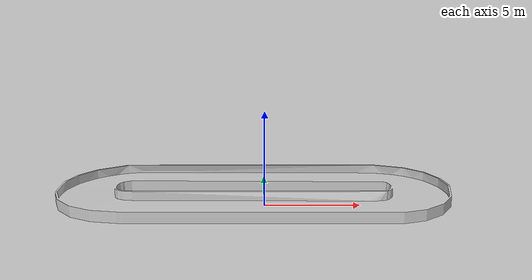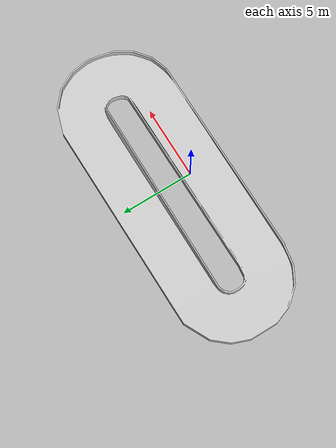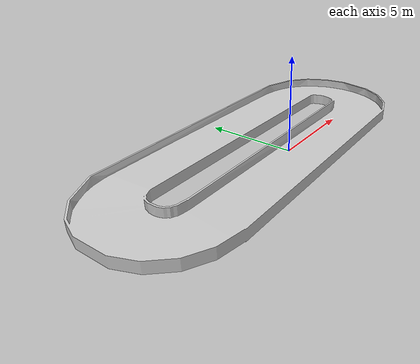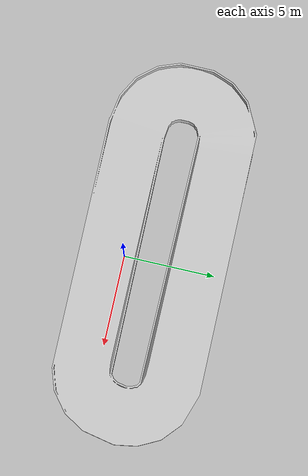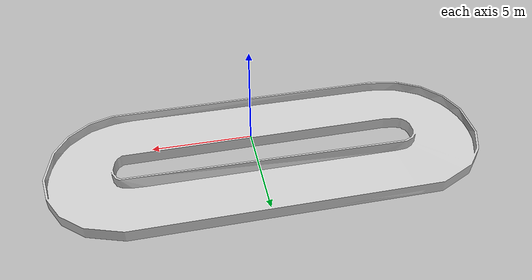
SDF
<?xml version="1.0" encoding="UTF-8"?>
<sdf version="1.4">
    <world name="racetrack">
        <scene>
            <shadows>0</shadows>
            <grid>0</grid>
            <origin_visual>0</origin_visual>
            <sky></sky>
        </scene>
        <physics type="ode" default="true">
            <!-- Default physics profile with no changes -->
        </physics>
        <physics name="fast_simulation" type="ode" default="false">
            <real_time_update_rate>0</real_time_update_rate>
        </physics>

        <include>
            <uri>model://sun</uri>
        </include>
        <gui>
            <camera name="my_camera">
                <pose>-3.2 7.8 31 0 1.5707963 1.5707963</pose>
            </camera>
        </gui>

        <model name="track">
            <pose>0 1 0  0 0 0</pose>
            <static>true</static>
            <link name="track">
                <visual name="visual">
                <geometry>
                    <!-- Relative path defined in package.xml -->
                    <mesh><uri>model://testTrack_decimated.dae</uri></mesh>
                </geometry>
                </visual>
                <collision name="collision">
                    <geometry>
                        <plane>
                            <normal>0 0 1</normal>
                            <size>100 100</size>
                        </plane>
                    </geometry>
                    <surface>
                        <friction>
                            <ode>
                                <mu>100</mu>
                                <mu2>50</mu2>
                            </ode>
                        </friction>
                    </surface>
                </collision>
            </link>
        </model>
    </world>
</sdf>
